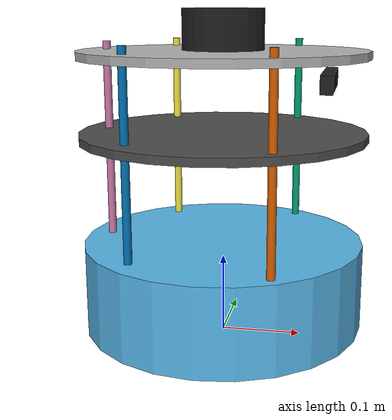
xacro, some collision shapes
<?xml version="1.0" ?>
<robot name="turtlebot2" xmlns:xacro="http://ros.org/wiki/xacro">

  <xacro:include filename="$(find kobuki_description)/urdf/kobuki.urdf"/>
  <xacro:include filename="$(find turtlebot2)/urdf/sensors/camera.urdf.xacro"/>
  <xacro:include filename="$(find turtlebot2)/urdf/sensors/lidar.urdf.xacro"/>
  <xacro:include filename="$(find turtlebot2)/urdf/structures.urdf.xacro"/>
  <xacro:include filename="$(find turtlebot2)/urdf/colors.urdf.xacro"/>

  <xacro:cylinder_structure name="tick1" x="0.08" y="0.14" z="0.2" length="0.33" radius="0.005" parent="base_link"/>
  <xacro:cylinder_structure name="tick2" x="-0.09" y="0.12" z="0.2" length="0.33" radius="0.005" parent="base_link"/>
  <xacro:cylinder_structure name="tick3" x="-0.09" y="-0.12" z="0.2" length="0.33" radius="0.005" parent="base_link"/>
  <xacro:cylinder_structure name="tick4" x="0.08" y="-0.14" z="0.2" length="0.33" radius="0.005" parent="base_link"/>
  <xacro:cylinder_structure name="tick5" x="-0.15" y="0.0" z="0.2" length="0.33" radius="0.005" parent="base_link"/>
  <xacro:cylinder_structure name="laser_base" x="0.0" y="0.0" z="0.35" length="0.01" radius="0.18" parent="base_link"/>
  <xacro:cylinder_structure name="middle_base" x="0.0" y="0.0" z="0.25" length="0.01" radius="0.18" parent="base_link"/>

  <xacro:set_camera name="camera" xyz="0.13 0 0.32" rpy="0 0 0" parent_frame="base_link"/>
  <xacro:set_lidar name="lidar" xyz="0 0 0.0275" parent_frame="laser_base_link"/>

</robot>

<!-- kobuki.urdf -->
<!-- |    This document was autogenerated by xacro from /home/carloscam/tfg_ws/install/kobuki_description/share/kobuki_description/urdf/kobuki_standalone.urdf.xacro | -->
<!-- |    EDITING THIS FILE BY HAND IS NOT RECOMMENDED                                 | -->
<robot name="kobuki_standalone" xmlns:controller="http://playerstage.sourceforge.net/gazebo/xmlschema/#controller" xmlns:interface="http://playerstage.sourceforge.net/gazebo/xmlschema/#interface" xmlns:sensor="http://playerstage.sourceforge.net/gazebo/xmlschema/#sensor">
  <link name="base_footprint"/>
  <joint name="base_joint" type="fixed">
    <origin rpy="0 0 0" xyz="0 0 0.0102"/>
    <parent link="base_footprint"/>
    <child link="base_link"/>
  </joint>
  <link name="base_link">
    <visual>
      <geometry>
        <!-- new mesh -->
        <mesh filename="package://kobuki_description/meshes/main_body.dae"/>
      </geometry>
      <origin rpy="0 0 0" xyz="0.001 0 0.05199"/>
    </visual>
    <collision name="base">
      <geometry>
        <cylinder length="0.10938" radius="0.178"/>
      </geometry>
      <origin rpy="0 0 0" xyz="0.0 0 0.05949"/>
    </collision>
    <inertial>
      <!-- COM experimentally determined -->
      <origin xyz="0.01 0 0"/>
      <mass value="2.4"/>
      <!-- 2.4/2.6 kg for small/big battery pack -->
      <inertia ixx="0.019995" ixy="0.0" ixz="0.0" iyy="0.019995" iyz="0.0" izz="0.03675"/>
    </inertial>
  </link>
  <joint name="wheel_left_joint" type="continuous">
    <parent link="base_link"/>
    <child link="wheel_left_link"/>
    <origin rpy="-1.5707963267948966 0 0" xyz="0.00 0.115 0.0250"/>
    <axis xyz="0 0 1"/>
  </joint>
  <link name="wheel_left_link">
    <visual>
      <geometry>
        <mesh filename="package://kobuki_description/meshes/wheel.dae"/>
      </geometry>
      <origin rpy="0 0 0" xyz="0 0 0"/>
    </visual>
    <collision>
      <geometry>
        <cylinder length="0.0206" radius="0.035"/>
      </geometry>
      <origin rpy="0 0 0" xyz="0 0 0"/>
    </collision>
    <inertial>
      <mass value="0.01"/>
      <origin xyz="0 0 0"/>
      <inertia ixx="0.001" ixy="0.0" ixz="0.0" iyy="0.001" iyz="0.0" izz="0.001"/>
    </inertial>
  </link>
  <joint name="wheel_right_joint" type="continuous">
    <parent link="base_link"/>
    <child link="wheel_right_link"/>
    <origin rpy="-1.5707963267948966 0 0" xyz="0.00 -0.115 0.0250"/>
    <axis xyz="0 0 1"/>
  </joint>
  <link name="wheel_right_link">
    <visual>
      <geometry>
        <mesh filename="package://kobuki_description/meshes/wheel.dae"/>
      </geometry>
      <origin rpy="0 0 0" xyz="0 0 0"/>
    </visual>
    <collision>
      <geometry>
        <cylinder length="0.0206" radius="0.035"/>
      </geometry>
      <origin rpy="0 0 0" xyz="0 0 0"/>
    </collision>
    <inertial>
      <mass value="0.01"/>
      <origin xyz="0 0 0"/>
      <inertia ixx="0.001" ixy="0.0" ixz="0.0" iyy="0.001" iyz="0.0" izz="0.001"/>
    </inertial>
  </link>
  <joint name="caster_front_joint" type="fixed">
    <parent link="base_link"/>
    <child link="caster_front_link"/>
    <origin rpy="-1.5707963267948966 0 0" xyz="0.115 0.0 0.007"/>
  </joint>
  <link name="caster_front_link">
    <collision>
      <geometry>
        <cylinder length="0.0176" radius="0.017"/>
      </geometry>
      <origin rpy="0 0 0" xyz="0 0 0"/>
    </collision>
    <inertial>
      <mass value="0.01"/>
      <origin xyz="0 0 0"/>
      <inertia ixx="0.001" ixy="0.0" ixz="0.0" iyy="0.001" iyz="0.0" izz="0.001"/>
    </inertial>
  </link>
  <joint name="caster_back_joint" type="fixed">
    <parent link="base_link"/>
    <child link="caster_back_link"/>
    <origin rpy="-1.5707963267948966 0 0" xyz="-0.135 0.0 0.009"/>
  </joint>
  <link name="caster_back_link">
    <collision>
      <geometry>
        <cylinder length="0.0176" radius="0.017"/>
      </geometry>
      <origin rpy="0 0 0" xyz="0 0 0"/>
    </collision>
    <inertial>
      <mass value="0.01"/>
      <origin xyz="0 0 0"/>
      <inertia ixx="0.001" ixy="0.0" ixz="0.0" iyy="0.001" iyz="0.0" izz="0.001"/>
    </inertial>
  </link>
  <!-- Kobuki's sensors -->
  <joint name="gyro_joint" type="fixed">
    <axis xyz="0 1 0"/>
    <origin rpy="0 0 0" xyz="0.056 0.062 0.0202"/>
    <parent link="base_link"/>
    <child link="gyro_link"/>
  </joint>
  <link name="gyro_link">
    <inertial>
      <mass value="0.001"/>
      <origin rpy="0 0 0" xyz="0 0 0"/>
      <inertia ixx="0.0001" ixy="0" ixz="0" iyy="0.000001" iyz="0" izz="0.0001"/>
    </inertial>
  </link>
  <joint name="cliff_sensor_left_joint" type="fixed">
    <origin rpy="0 1.5707963267948966 0" xyz="0.08734 0.13601 0.0214"/>
    <parent link="base_link"/>
    <child link="cliff_sensor_left_link"/>
  </joint>
  <link name="cliff_sensor_left_link">
    <inertial>
      <mass value="0.0001"/>
      <origin xyz="0 0 0"/>
      <inertia ixx="0.0001" ixy="0.0" ixz="0.0" iyy="0.0001" iyz="0.0" izz="0.0001"/>
    </inertial>
  </link>
  <joint name="cliff_sensor_right_joint" type="fixed">
    <origin rpy="0 1.5707963267948966 0" xyz="0.085 -0.13601 0.0214"/>
    <parent link="base_link"/>
    <child link="cliff_sensor_right_link"/>
  </joint>
  <link name="cliff_sensor_right_link">
    <inertial>
      <mass value="0.0001"/>
      <origin xyz="0 0 0"/>
      <inertia ixx="0.0001" ixy="0.0" ixz="0.0" iyy="0.0001" iyz="0.0" izz="0.0001"/>
    </inertial>
  </link>
  <joint name="cliff_sensor_front_joint" type="fixed">
    <origin rpy="0 1.5707963267948966 0" xyz="0.156 0.00 0.0214"/>
    <parent link="base_link"/>
    <child link="cliff_sensor_front_link"/>
  </joint>
  <link name="cliff_sensor_front_link">
    <inertial>
      <mass value="0.0001"/>
      <origin xyz="0 0 0"/>
      <inertia ixx="0.0001" ixy="0.0" ixz="0.0" iyy="0.0001" iyz="0.0" izz="0.0001"/>
    </inertial>
  </link>
  <gazebo reference="wheel_left_link">
    <mu1>1.0</mu1>
    <mu2>1.0</mu2>
    <kp>1000000.0</kp>
    <kd>100.0</kd>
    <minDepth>0.001</minDepth>
    <maxVel>1.0</maxVel>
  </gazebo>
  <gazebo reference="wheel_right_link">
    <mu1>1.0</mu1>
    <mu2>1.0</mu2>
    <kp>1000000.0</kp>
    <kd>100.0</kd>
    <minDepth>0.001</minDepth>
    <maxVel>1.0</maxVel>
  </gazebo>
  <gazebo reference="caster_front_link">
    <mu1>0.0</mu1>
    <mu2>0.0</mu2>
    <kp>1000000.0</kp>
    <kd>100.0</kd>
    <minDepth>0.001</minDepth>
    <maxVel>1.0</maxVel>
  </gazebo>
  <gazebo reference="caster_back_link">
    <mu1>0.0</mu1>
    <mu2>0.0</mu2>
    <kp>1000000.0</kp>
    <kd>100.0</kd>
    <minDepth>0.001</minDepth>
    <maxVel>1.0</maxVel>
  </gazebo>
  <gazebo reference="base_link">
    <mu1>0.3</mu1>
    <mu2>0.3</mu2>
    <sensor name="bumpers" type="contact">
      <always_on>1</always_on>
      <update_rate>50.0</update_rate>
      <visualize>true</visualize>
      <contact>
        <collision>base_footprint_fixed_joint_lump__base_collision</collision>
      </contact>
    </sensor>
  </gazebo>
  <gazebo reference="cliff_sensor_left_link">
    <sensor name="cliff_sensor_left" type="ray">
      <always_on>true</always_on>
      <update_rate>50</update_rate>
      <visualize>true</visualize>
      <ray>
        <scan>
          <horizontal>
            <samples>50</samples>
            <resolution>1.0</resolution>
            <min_angle>-0.0436</min_angle>
            <!-- -2.5 degree -->
            <max_angle>0.0436</max_angle>
            <!-- 2.5 degree -->
          </horizontal>
          <!--            Can't use vertical rays until this bug is resolved: -->
          <!--            https://bitbucket.org/osrf/gazebo/issue/509/vertical-sensor-doesnt-works -->
        </scan>
        <range>
          <min>0.01</min>
          <max>0.15</max>
          <resolution>1.0</resolution>
        </range>
      </ray>
    </sensor>
  </gazebo>
  <gazebo reference="cliff_sensor_right_link">
    <sensor name="cliff_sensor_right" type="ray">
      <always_on>true</always_on>
      <update_rate>50</update_rate>
      <visualize>true</visualize>
      <ray>
        <scan>
          <horizontal>
            <samples>50</samples>
            <resolution>1.0</resolution>
            <min_angle>-0.0436</min_angle>
            <!-- -2.5 degree -->
            <max_angle>0.0436</max_angle>
            <!-- 2.5 degree -->
          </horizontal>
          <!--            Can't use vertical rays until this bug is resolved: -->
          <!--            https://bitbucket.org/osrf/gazebo/issue/509/vertical-sensor-doesnt-works -->
        </scan>
        <range>
          <min>0.01</min>
          <max>0.15</max>
          <resolution>1.0</resolution>
        </range>
      </ray>
    </sensor>
  </gazebo>
  <gazebo reference="cliff_sensor_front_link">
    <sensor name="cliff_sensor_front" type="ray">
      <always_on>true</always_on>
      <update_rate>50</update_rate>
      <visualize>true</visualize>
      <ray>
        <scan>
          <horizontal>
            <samples>50</samples>
            <resolution>1.0</resolution>
            <min_angle>-0.0436</min_angle>
            <!-- -2.5 degree -->
            <max_angle>0.0436</max_angle>
            <!-- 2.5 degree -->
          </horizontal>
          <!-- 	          Can't use vertical rays until this bug is resolved: -->
          <!--            https://bitbucket.org/osrf/gazebo/issue/509/vertical-sensor-doesnt-works -->
        </scan>
        <range>
          <min>0.01</min>
          <max>0.15</max>
          <resolution>1.0</resolution>
        </range>
      </ray>
    </sensor>
  </gazebo>
  <gazebo reference="gyro_link">
    <sensor name="imu" type="imu">
      <plugin filename="libgazebo_ros_imu_sensor.so" name="gazebo_ros_imu_controller">
        <ros>
          <argument>~/out:=imu</argument>
        </ros>
        <output_type>sensor_msgs/msg/Imu</output_type>
        <body_name>gyro_link</body_name>
        <frame_name>gyro_link</frame_name>
      </plugin>
      <always_on>true</always_on>
      <update_rate>50</update_rate>
      <visualize>false</visualize>
      <imu>
        <noise>
          <type>gaussian</type>
          <rate>
            <mean>0.0</mean>
            <stddev>1.96e-06</stddev>
            <!-- 0.25 x 0.25 (deg/s) -->
            <bias_mean>0.0</bias_mean>
            <bias_stddev>0.0</bias_stddev>
          </rate>
          <accel>
            <!-- not used in the plugin and real robot, hence using tutorial values -->
            <mean>0.0</mean>
            <stddev>1.7e-2</stddev>
            <bias_mean>0.1</bias_mean>
            <bias_stddev>0.001</bias_stddev>
          </accel>
        </noise>
      </imu>
    </sensor>
  </gazebo>
  <gazebo>
    <plugin filename="libgazebo_ros_diff_drive.so" name="differential_drive_controller">
      <update_rate>10</update_rate>
      <left_joint>wheel_left_joint</left_joint>
      <right_joint>wheel_right_joint</right_joint>
      <wheel_separation>0.230</wheel_separation>
      <wheel_diameter>0.070</wheel_diameter>
      <max_wheel_torque>1.0</max_wheel_torque>
      <max_wheel_acceleration>1.0</max_wheel_acceleration>
      <command_topic>cmd_vel</command_topic>
      <!-- output -->
      <publish_odom>true</publish_odom>
      <publish_odom_tf>true</publish_odom_tf>
      <publish_wheel_tf>true</publish_wheel_tf>
      <odometry_topic>odom</odometry_topic>
      <odometry_frame>odom</odometry_frame>
      <robot_base_frame>base_link</robot_base_frame>
    </plugin>
  </gazebo>
</robot>

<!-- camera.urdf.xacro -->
<robot xmlns:xacro="http://ros.org/wiki/xacro">

  <xacro:macro name="set_camera" params="name xyz rpy parent_frame">
    <link name="${name}_link">
      <visual>
        <origin xyz="0 0 0" rpy="0 0 0"/>
        <geometry>
          <box size="0.015 0.130 0.022"/>
        </geometry>
      </visual>

      <collision>
        <origin xyz="0 0 0" rpy="0 0 0"/>
        <geometry>
          <box size="0.015 0.130 0.022"/>
        </geometry>
      </collision>

      <inertial>
        <origin xyz="0 0 0" rpy="0 0 0"/>
        <mass value="0.035"/>
        <inertia ixx="0.001"  ixy="0"  ixz="0" iyy="0.001" iyz="0" izz="0.001" />
      </inertial>
    </link>

    <joint name="${name}_joint" type="fixed">
      <parent link="${parent_frame}"/>
      <child link="camera_link"/>
      <origin xyz="${xyz}" rpy="${rpy}"/>
    </joint>

    <link name="${name}_depth_frame"/>

    <joint name="${name}_depth_joint" type="fixed">
      <origin xyz="0 0 0" rpy="${-pi/2} 0 ${-pi/2}"/>
      <parent link="${name}_link"/>
      <child link="${name}_depth_frame"/>
    </joint>

    <gazebo reference="${name}_link">
      <sensor name="depth_${name}" type="depth">
        <visualize>true</visualize>
        <update_rate>30.0</update_rate>
        <camera name="${name}">
          <horizontal_fov>1.047198</horizontal_fov>
          <image>
            <width>640</width>
            <height>480</height>
            <format>R8G8B8</format>
          </image>
          <clip>
            <near>0.05</near>
            <far>12</far>
          </clip>
        </camera>
        <plugin name="depth_${name}_controller" filename="libgazebo_ros_camera.so">
          <baseline>0.2</baseline>
          <alwaysOn>true</alwaysOn>
          <updateRate>0.0</updateRate>
          <frame_name>${name}_depth_frame</frame_name>
          <pointCloudCutoff>0.5</pointCloudCutoff>
          <pointCloudCutoffMax>12.0</pointCloudCutoffMax>
          <distortionK1>0</distortionK1>
          <distortionK2>0</distortionK2>
          <distortionK3>0</distortionK3>
          <distortionT1>0</distortionT1>
          <distortionT2>0</distortionT2>
          <CxPrime>0</CxPrime>
          <Cx>0</Cx>
          <Cy>0</Cy>
          <focalLength>0</focalLength>
          <hackBaseline>0</hackBaseline>
        </plugin>
      </sensor>
    </gazebo>
  </xacro:macro>
</robot>

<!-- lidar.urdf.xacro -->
<robot xmlns:xacro="http://www.ros.org/wiki/xacro">

  <xacro:macro name="set_lidar" params="name xyz parent_frame">
    <link name="${name}_link">
      <inertial>
        <origin xyz="0 0 0" rpy="0 0 0"/>
        <mass value="0.125"/>
        <inertia ixx="0.001"  ixy="0"  ixz="0" iyy="0.001" iyz="0" izz="0.001" />
      </inertial>

      <collision>
        <origin xyz="0 0 0" rpy="0 0 0"/>
        <geometry>
          <cylinder radius="0.0508" length="0.055"/>
        </geometry>
      </collision>

      <visual>
        <origin xyz="0 0 0" rpy="0 0 0"/>
        <geometry>
          <cylinder radius="0.0508" length="0.055"/>
        </geometry>
      </visual>
    </link>

    <joint name="${name}_joint" type="fixed">
      <parent link="${parent_frame}"/>
      <child link="${name}_link"/>
      <origin xyz="0 0 0.0275" rpy="0 0 0"/>
    </joint>

    <gazebo reference="${name}_link">
      <sensor name="${name}" type="ray">
        <always_on>true</always_on>
        <visualize>true</visualize>
        <update_rate>5</update_rate>
        <ray>
          <scan>
            <horizontal>
              <samples>360</samples>
              <resolution>1.000000</resolution>
              <min_angle>0.000000</min_angle>
              <max_angle>6.280000</max_angle>
            </horizontal>
          </scan>
          <range>
            <min>0.120000</min>
            <max>3.5</max>
            <resolution>0.015000</resolution>
          </range>
          <noise>
            <type>gaussian</type>
            <mean>0.0</mean>
            <stddev>0.01</stddev>
          </noise>
        </ray>
        <plugin name="scan" filename="libgazebo_ros_ray_sensor.so">
          <ros>
            <remapping>~/out:=scan</remapping>
          </ros>
          <output_type>sensor_msgs/LaserScan</output_type>
          <frame_name>${name}_link</frame_name>
        </plugin>
      </sensor>
    </gazebo>
  </xacro:macro>

</robot>

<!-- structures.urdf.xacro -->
<robot xmlns:xacro="http://www.ros.org/wiki/xacro">

  <xacro:macro name="cylinder_structure" params="name x y z length radius parent">
    <link name="${name}_link">
      <visual>
        <origin xyz="0 0 0" rpy="0 0 0"/>
        <geometry>
          <cylinder length="${length}" radius="${radius}"/>
        </geometry>
      </visual>
      <collision name="base">
        <origin xyz="0 0 0" rpy="0 0 0"/>
        <geometry>
          <cylinder length="${length}" radius="${radius}"/>
        </geometry>
      </collision>
      <inertial>
        <mass value="0.3"/>
        <!-- cylindrical shell : Izz=m*r^2; Ixx=Iyy=1/12*m*(6*r^2+h^2) -->
        <!-- solid cylinder : Izz=(m*r^2)/2; Ixx=Iyy=1/12*m*(3*r^2+h^2) -->
        <inertia  ixx="0.002385" ixy="0.00"  ixz="0.00" iyy="0.002385" iyz="0.00" izz="0.00027" />
      </inertial>
    </link>

    <joint name="${name}_joint" type="fixed">
      <origin xyz="${x} ${y} ${z}" rpy="0 0 0"/>
      <parent link="${parent}"/>
      <child link="${name}_link" />
    </joint>
  </xacro:macro>

</robot>

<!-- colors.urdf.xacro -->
<robot xmlns:xacro="http://www.ros.org/wiki/xacro">

  <!-- Macros -->
  <xacro:macro name="create_color" params="name value">
    <material name="${name}">
      <color rgba="${value}"/>
    </material>
  </xacro:macro>

  <xacro:macro name="gazebo_color" params="link color">
    <gazebo reference="${link}">
      <material>Gazebo/${color}</material>
    </gazebo>
  </xacro:macro>

  <!-- Setting color for links -->
  <xacro:create_color name="Gray" value="0.5 0.5 0.5 1"/>
  <xacro:create_color name="DarkGray" value="0.1 0.1 0.1 0.5"/>
  <xacro:create_color name="Black" value="0 0 0 1"/>

  <xacro:gazebo_color link="base_tick1_link" color="Gray"/>
  <xacro:gazebo_color link="base_tick2_link" color="Gray"/>
  <xacro:gazebo_color link="base_tick3_link" color="Gray"/>
  <xacro:gazebo_color link="base_tick4_link" color="Gray"/>
  <xacro:gazebo_color link="base_tick5_link" color="Gray"/>
  <xacro:gazebo_color link="camera_support_tick1_link" color="Gray"/>
  <xacro:gazebo_color link="camera_support_tick2_link" color="Gray"/>
  <xacro:gazebo_color link="lower_base_link" color="DarkGrey"/>
  <xacro:gazebo_color link="middle_base_link" color="DarkGrey"/>
  <xacro:gazebo_color link="upper_base_link" color="DarkGrey"/>
  <xacro:gazebo_color link="camera_support_base_link" color="DarkGrey"/>
  <xacro:gazebo_color link="camera_link" color="Black"/>
  <xacro:gazebo_color link="lidar_link" color="Black"/>

</robot>
